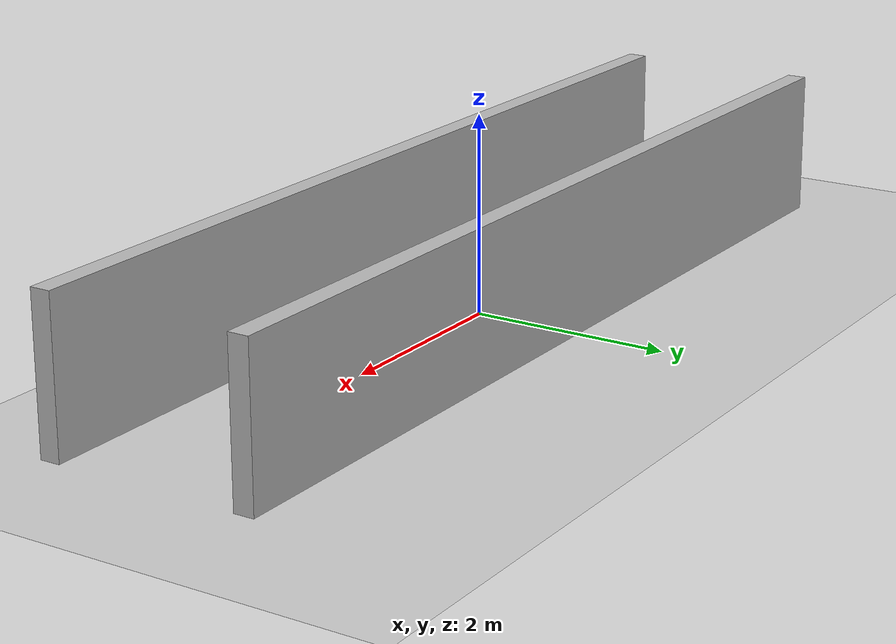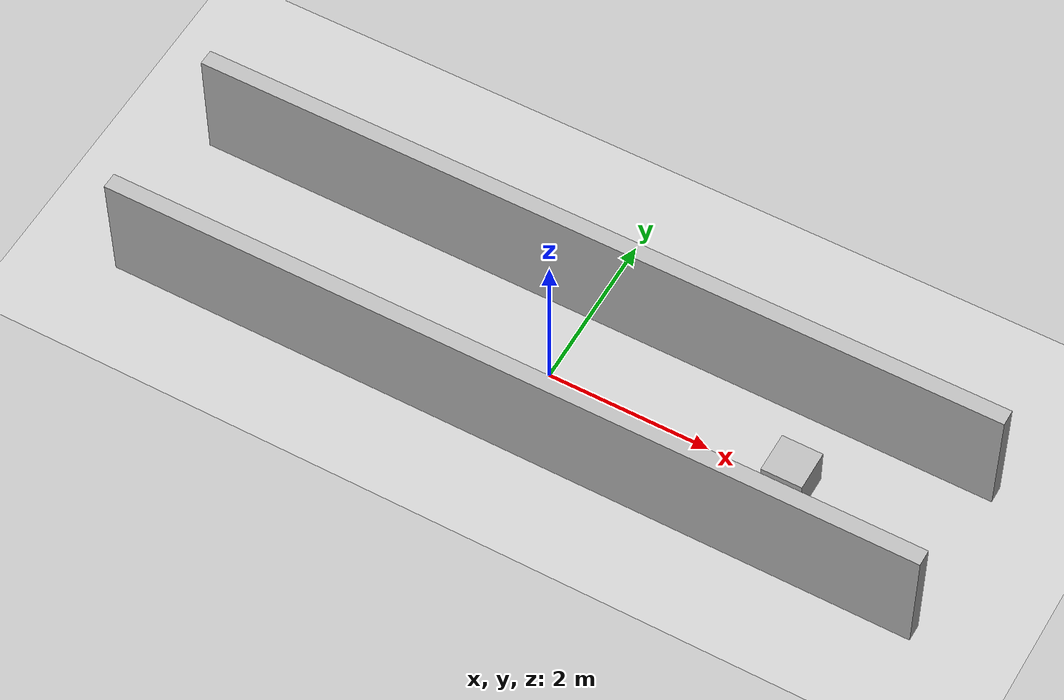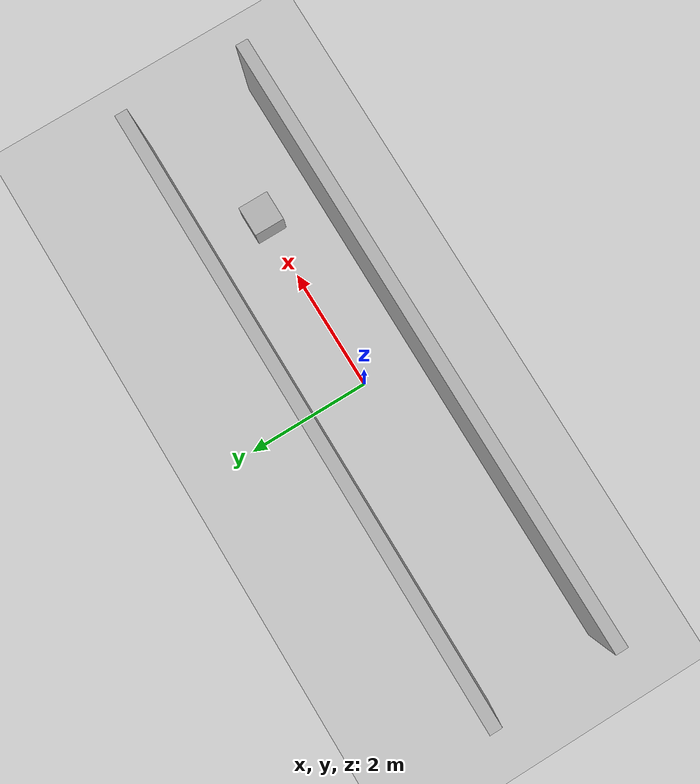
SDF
<?xml version="1.0" ?>
<sdf version="1.6">
  <world name="corridor_world">
    <include>
      <uri>model://ground_plane</uri>
    </include>
    <include>
      <uri>model://sun</uri>
    </include>

    <model name="left_wall">
      <static>true</static>
      <link name="link">
        <collision name="collision">
          <geometry>
            <box>
              <size>10 0.2 1.5</size>
            </box>
          </geometry>
        </collision>
        <visual name="visual">
          <geometry>
            <box>
              <size>10 0.2 1.5</size>
            </box>
          </geometry>
        </visual>
        <pose>0 1 0.75 0 0 0</pose>
      </link>
    </model>

    <model name="right_wall">
      <static>true</static>
      <link name="link">
        <collision name="collision">
          <geometry>
            <box>
              <size>10 0.2 1.5</size>
            </box>
          </geometry>
        </collision>
        <visual name="visual">
          <geometry>
            <box>
              <size>10 0.2 1.5</size>
            </box>
          </geometry>
        </visual>
        <pose>0 -1 0.75 0 0 0</pose>
      </link>
    </model>

    <model name="static_obstacle">
      <static>true</static>
      <link name="link">
        <collision name="collision">
          <geometry>
            <box>
              <size>0.5 0.5 0.5</size>
            </box>
          </geometry>
        </collision>
        <visual name="visual">
          <geometry>
            <box>
              <size>0.5 0.5 0.5</size>
            </box>
          </geometry>
        </visual>
        <pose>3 0 0.25 0 0 0</pose>
      </link>
    </model>
  </world>
</sdf>
